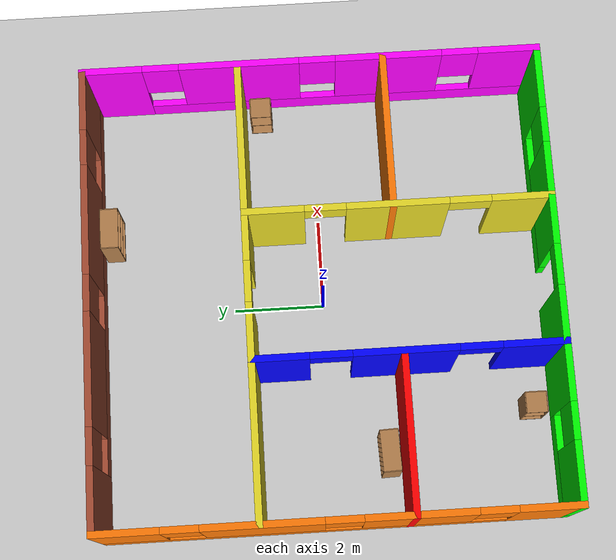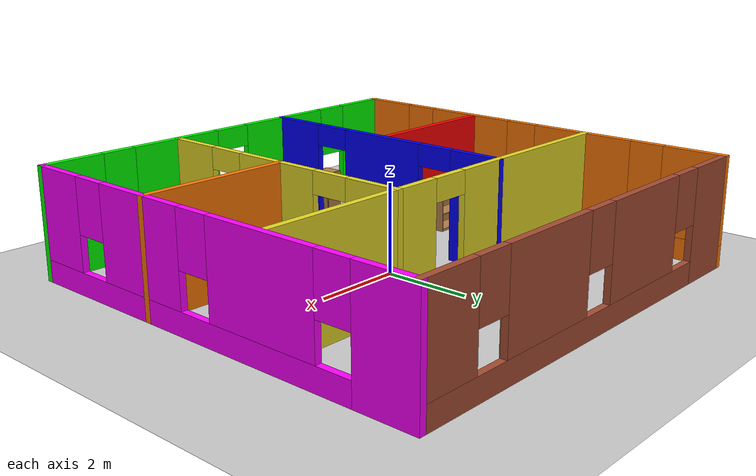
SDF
<sdf version="1.7">
 <world name="default">
  <light name="sun" type="directional">
   <pose>0 0 10 0 -0 0</pose>
   <diffuse>0.8 0.8 0.8 1</diffuse>
   <specular>0.2 0.2 0.2 1</specular>
   <attenuation>
    <range>1000</range>
    <constant>0.9</constant>
    <linear>0.01</linear>
    <quadratic>0.001</quadratic>
   </attenuation>
   <direction>-0.5 0.1 -0.9</direction>
   <spot><inner_angle>0</inner_angle><outer_angle>0</outer_angle><falloff>0</falloff></spot>
  </light>
  <model name="ground_plane">
   <static>1</static>
   <link name="link">
    <collision name="collision">
     <geometry><plane><normal>0 0 1</normal><size>100 100</size></plane></geometry>
     <surface>
      <contact><collide_bitmask>65535</collide_bitmask></contact>
      <friction><ode><mu>100</mu><mu2>50</mu2></ode></friction>
     </surface>
    </collision>
    <visual name="visual">
     <cast_shadows>0</cast_shadows>
     <geometry><plane><normal>0 0 1</normal><size>100 100</size></plane></geometry>
     <material>
      <script><uri>file://media/materials/scripts/gazebo.material</uri><name>Gazebo/Grey</name></script>
     </material>
    </visual>
   </link>
  </model>
  <gravity>0 0 -9.8</gravity>
  <magnetic_field>6e-06 2.3e-05 -4.2e-05</magnetic_field>
  <atmosphere type="adiabatic"/>
  <physics name="default_physics" default="0" type="ode">
   <max_step_size>0.001</max_step_size>
   <real_time_factor>1</real_time_factor>
   <real_time_update_rate>1000</real_time_update_rate>
  </physics>
  <scene><ambient>0.4 0.4 0.4 1</ambient><background>0.7 0.7 0.7 1</background><shadows>1</shadows></scene>
  <spherical_coordinates>
   <surface_model>EARTH_WGS84</surface_model>
   <latitude_deg>0</latitude_deg>
   <longitude_deg>0</longitude_deg>
   <elevation>0</elevation>
   <heading_deg>0</heading_deg>
  </spherical_coordinates>
  <model name="model">
   <link name="Wall_11">
    <pose>1.6 -1.7 0 0 0 -1.5708</pose>
    <visual name="Wall_11_Visual_0">
     <pose>-2.69394 0 1.25 0 -0 0</pose>
     <geometry><box><size>1.36212 0.15 2.5</size></box></geometry>
     <material>
      <script><uri>file://media/materials/scripts/gazebo.material</uri><name>Gazebo/Yellow</name></script>
      <ambient>1 1 0 1</ambient>
     </material>
     <meta><layer>0</layer></meta>
    </visual>
    <collision name="Wall_11_Collision_0">
     <geometry><box><size>1.36212 0.15 2.5</size></box></geometry>
     <pose>-2.69394 0 1.25 0 -0 0</pose>
    </collision>
    <visual name="Wall_11_Visual_1">
     <pose>-0.001566 0 1.25 0 -0 0</pose>
     <geometry><box><size>2.22263 0.15 2.5</size></box></geometry>
     <material>
      <script><uri>file://media/materials/scripts/gazebo.material</uri><name>Gazebo/Yellow</name></script>
      <ambient>1 1 0 1</ambient>
     </material>
     <meta><layer>0</layer></meta>
    </visual>
    <collision name="Wall_11_Collision_1">
     <geometry><box><size>2.22263 0.15 2.5</size></box></geometry>
     <pose>-0.001566 0 1.25 0 -0 0</pose>
    </collision>
    <visual name="Wall_11_Visual_2">
     <pose>2.69238 0 1.25 0 -0 0</pose>
     <geometry><box><size>1.36525 0.15 2.5</size></box></geometry>
     <material>
      <script><uri>file://media/materials/scripts/gazebo.material</uri><name>Gazebo/Yellow</name></script>
      <ambient>1 1 0 1</ambient>
     </material>
     <meta><layer>0</layer></meta>
    </visual>
    <collision name="Wall_11_Collision_2">
     <geometry><box><size>1.36525 0.15 2.5</size></box></geometry>
     <pose>2.69238 0 1.25 0 -0 0</pose>
    </collision>
    <visual name="Wall_11_Visual_3">
     <pose>-1.56288 0 2.25 0 -0 0</pose>
     <geometry><box><size>0.9 0.15 0.5</size></box></geometry>
     <material>
      <script><uri>file://media/materials/scripts/gazebo.material</uri><name>Gazebo/Yellow</name></script>
      <ambient>1 1 0 1</ambient>
     </material>
     <meta><layer>0</layer></meta>
    </visual>
    <collision name="Wall_11_Collision_3">
     <geometry><box><size>0.9 0.15 0.5</size></box></geometry>
     <pose>-1.56288 0 2.25 0 -0 0</pose>
    </collision>
    <visual name="Wall_11_Visual_4">
     <pose>1.55975 0 2.25 0 -0 0</pose>
     <geometry><box><size>0.9 0.15 0.5</size></box></geometry>
     <material>
      <script><uri>file://media/materials/scripts/gazebo.material</uri><name>Gazebo/Yellow</name></script>
      <ambient>0 1 0 1</ambient>
     </material>
     <meta><layer>0</layer></meta>
    </visual>
    <collision name="Wall_11_Collision_4">
     <geometry><box><size>0.9 0.15 0.5</size></box></geometry>
     <pose>1.55975 0 2.25 0 -0 0</pose>
    </collision>
   </link>
   <link name="Wall_13">
    <collision name="Wall_13_Collision">
     <geometry><box><size>3.55 0.15 2.5</size></box></geometry>
     <pose>0 0 1.25 0 -0 0</pose>
    </collision>
    <visual name="Wall_13_Visual">
     <pose>0 0 1.25 0 -0 0</pose>
     <geometry><box><size>3.55 0.15 2.5</size></box></geometry>
     <material>
      <script><uri>file://media/materials/scripts/gazebo.material</uri><name>Gazebo/Grey</name></script>
      <ambient>1 0 0 1</ambient>
     </material>
     <meta><layer>0</layer></meta>
    </visual>
    <pose>-3.3 -1.6 0 0 -0 0</pose>
   </link>
   <link name="Wall_15">
    <collision name="Wall_15_Collision">
     <geometry><box><size>3.55 0.15 2.5</size></box></geometry>
     <pose>0 0 1.25 0 -0 0</pose>
    </collision>
    <visual name="Wall_15_Visual">
     <pose>0 0 1.25 0 -0 0</pose>
     <geometry><box><size>3.55 0.15 2.5</size></box></geometry>
     <material>
      <script><uri>file://media/materials/scripts/gazebo.material</uri><name>Gazebo/Grey</name></script>
      <ambient>0.996078 0.47451 0.0196078 1</ambient>
     </material>
     <meta><layer>0</layer></meta>
    </visual>
    <pose>3.3 -1.6 0 0 -0 0</pose>
   </link>
   <link name="Wall_2">
    <pose>0 -5 0 0 -0 3.14159</pose>
    <visual name="Wall_2_Visual_0">
     <pose>-4.33866 0 1.25 0 -0 0</pose>
     <geometry><box><size>1.47269 0.15 2.5</size></box></geometry>
     <material>
      <script><uri>file://media/materials/scripts/gazebo.material</uri><name>Gazebo/Grey</name></script>
      <ambient>0 1 0 1</ambient>
     </material>
     <meta><layer>0</layer></meta>
    </visual>
    <collision name="Wall_2_Collision_0">
     <geometry><box><size>1.47269 0.15 2.5</size></box></geometry>
     <pose>-4.33866 0 1.25 0 -0 0</pose>
    </collision>
    <visual name="Wall_2_Visual_1">
     <pose>1.63385 0 1.25 0 -0 0</pose>
     <geometry><box><size>2.48081 0.15 2.5</size></box></geometry>
     <material>
      <script><uri>file://media/materials/scripts/gazebo.material</uri><name>Gazebo/Grey</name></script>
      <ambient>0 1 0 1</ambient>
     </material>
     <meta><layer>0</layer></meta>
    </visual>
    <collision name="Wall_2_Collision_1">
     <geometry><box><size>2.48081 0.15 2.5</size></box></geometry>
     <pose>1.63385 0 1.25 0 -0 0</pose>
    </collision>
    <visual name="Wall_2_Visual_2">
     <pose>-2.05443 0 0.25 0 -0 0</pose>
     <geometry><box><size>3.09576 0.15 0.5</size></box></geometry>
     <material>
      <script><uri>file://media/materials/scripts/gazebo.material</uri><name>Gazebo/Grey</name></script>
      <ambient>0 1 0 1</ambient>
     </material>
     <meta><layer>0</layer></meta>
    </visual>
    <collision name="Wall_2_Collision_2">
     <geometry><box><size>3.09576 0.15 0.5</size></box></geometry>
     <pose>-2.05443 0 0.25 0 -0 0</pose>
    </collision>
    <visual name="Wall_2_Visual_3">
     <pose>3.97463 0 0.25 0 -0 0</pose>
     <geometry><box><size>2.20074 0.15 0.5</size></box></geometry>
     <material>
      <script><uri>file://media/materials/scripts/gazebo.material</uri><name>Gazebo/Grey</name></script>
      <ambient>0 1 0 1</ambient>
     </material>
     <meta><layer>0</layer></meta>
    </visual>
    <collision name="Wall_2_Collision_3">
     <geometry><box><size>2.20074 0.15 0.5</size></box></geometry>
     <pose>3.97463 0 0.25 0 -0 0</pose>
    </collision>
    <visual name="Wall_2_Visual_4">
     <pose>-1.65443 0 1.5 0 -0 0</pose>
     <geometry><box><size>2.29576 0.15 2</size></box></geometry>
     <material>
      <script><uri>file://media/materials/scripts/gazebo.material</uri><name>Gazebo/Grey</name></script>
      <ambient>0 1 0 1</ambient>
     </material>
     <meta><layer>0</layer></meta>
    </visual>
    <collision name="Wall_2_Collision_4">
     <geometry><box><size>2.29576 0.15 2</size></box></geometry>
     <pose>-1.65443 0 1.5 0 -0 0</pose>
    </collision>
    <visual name="Wall_2_Visual_5">
     <pose>-1.65443 0 1.5 0 -0 0</pose>
     <geometry><box><size>2.29576 0.15 2</size></box></geometry>
     <material>
      <script><uri>file://media/materials/scripts/gazebo.material</uri><name>Gazebo/Grey</name></script>
      <ambient>0 1 0 1</ambient>
     </material>
     <meta><layer>0</layer></meta>
    </visual>
    <collision name="Wall_2_Collision_5">
     <geometry><box><size>2.29576 0.15 2</size></box></geometry>
     <pose>-1.65443 0 1.5 0 -0 0</pose>
    </collision>
    <visual name="Wall_2_Visual_6">
     <pose>4.37463 0 1.5 0 -0 0</pose>
     <geometry><box><size>1.40074 0.15 2</size></box></geometry>
     <material>
      <script><uri>file://media/materials/scripts/gazebo.material</uri><name>Gazebo/Grey</name></script>
      <ambient>0 1 0 1</ambient>
     </material>
     <meta><layer>0</layer></meta>
    </visual>
    <collision name="Wall_2_Collision_6">
     <geometry><box><size>1.40074 0.15 2</size></box></geometry>
     <pose>4.37463 0 1.5 0 -0 0</pose>
    </collision>
    <visual name="Wall_2_Visual_7">
     <pose>-3.20231 0 1.9 0 -0 0</pose>
     <geometry><box><size>0.8 0.15 1.2</size></box></geometry>
     <material>
      <script><uri>file://media/materials/scripts/gazebo.material</uri><name>Gazebo/Grey</name></script>
      <ambient>0 1 0 1</ambient>
     </material>
     <meta><layer>0</layer></meta>
    </visual>
    <collision name="Wall_2_Collision_7">
     <geometry><box><size>0.8 0.15 1.2</size></box></geometry>
     <pose>-3.20231 0 1.9 0 -0 0</pose>
    </collision>
    <visual name="Wall_2_Visual_8">
     <pose>3.27426 0 1.9 0 -0 0</pose>
     <geometry><box><size>0.8 0.15 1.2</size></box></geometry>
     <material>
      <script><uri>file://media/materials/scripts/gazebo.material</uri><name>Gazebo/Grey</name></script>
      <ambient>0 1 0 1</ambient>
     </material>
     <meta><layer>0</layer></meta>
    </visual>
    <collision name="Wall_2_Collision_8">
     <geometry><box><size>0.8 0.15 1.2</size></box></geometry>
     <pose>3.27426 0 1.9 0 -0 0</pose>
    </collision>
    <visual name="Wall_2_Visual_9">
     <pose>-0.05655 0 2.25 0 -0 0</pose>
     <geometry><box><size>0.9 0.15 0.5</size></box></geometry>
     <material>
      <script><uri>file://media/materials/scripts/gazebo.material</uri><name>Gazebo/Grey</name></script>
      <ambient>0 1 0 1</ambient>
     </material>
     <meta><layer>0</layer></meta>
    </visual>
    <collision name="Wall_2_Collision_9">
     <geometry><box><size>0.9 0.15 0.5</size></box></geometry>
     <pose>-0.05655 0 2.25 0 -0 0</pose>
    </collision>
    <visual name="Wall_2_Visual_10">
     <pose>-0.05655 0 2.25 0 -0 0</pose>
     <geometry><box><size>0.9 0.15 0.5</size></box></geometry>
     <material>
      <script><uri>file://media/materials/scripts/gazebo.material</uri><name>Gazebo/Grey</name></script>
      <ambient>0 1 0 1</ambient>
     </material>
     <meta><layer>0</layer></meta>
    </visual>
    <collision name="Wall_2_Collision_10">
     <geometry><box><size>0.9 0.15 0.5</size></box></geometry>
     <pose>-0.05655 0 2.25 0 -0 0</pose>
    </collision>
   </link>
   <link name="Wall_3">
    <pose>-5 0 0 0 -0 1.5708</pose>
    <visual name="Wall_3_Visual_0">
     <pose>-4.37894 0 1.25 0 -0 0</pose>
     <geometry><box><size>1.39212 0.15 2.5</size></box></geometry>
     <material>
      <script><uri>file://media/materials/scripts/gazebo.material</uri><name>Gazebo/Grey</name></script>
      <ambient>0.996078 0.47451 0.0196078 1</ambient>
     </material>
     <meta><layer>0</layer></meta>
    </visual>
    <collision name="Wall_3_Collision_0">
     <geometry><box><size>1.39212 0.15 2.5</size></box></geometry>
     <pose>-4.37894 0 1.25 0 -0 0</pose>
    </collision>
    <visual name="Wall_3_Visual_1">
     <pose>0.69606 0 0.25 0 -0 0</pose>
     <geometry><box><size>8.75788 0.15 0.5</size></box></geometry>
     <material>
      <script><uri>file://media/materials/scripts/gazebo.material</uri><name>Gazebo/Grey</name></script>
      <ambient>0.996078 0.47451 0.0196078 1</ambient>
     </material>
     <meta><layer>0</layer></meta>
    </visual>
    <collision name="Wall_3_Collision_1">
     <geometry><box><size>8.75788 0.15 0.5</size></box></geometry>
     <pose>0.69606 0 0.25 0 -0 0</pose>
    </collision>
    <visual name="Wall_3_Visual_2">
     <pose>-1.71 0 1.5 0 -0 0</pose>
     <geometry><box><size>2.34576 0.15 2</size></box></geometry>
     <material>
      <script><uri>file://media/materials/scripts/gazebo.material</uri><name>Gazebo/Grey</name></script>
      <ambient>0.996078 0.47451 0.0196078 1</ambient>
     </material>
     <meta><layer>0</layer></meta>
    </visual>
    <collision name="Wall_3_Collision_2">
     <geometry><box><size>2.34576 0.15 2</size></box></geometry>
     <pose>-1.71 0 1.5 0 -0 0</pose>
    </collision>
    <visual name="Wall_3_Visual_3">
     <pose>1.53985 0 1.5 0 -0 0</pose>
     <geometry><box><size>2.55394 0.15 2</size></box></geometry>
     <material>
      <script><uri>file://media/materials/scripts/gazebo.material</uri><name>Gazebo/Grey</name></script>
      <ambient>0.996078 0.47451 0.0196078 1</ambient>
     </material>
     <meta><layer>0</layer></meta>
    </visual>
    <collision name="Wall_3_Collision_3">
     <geometry><box><size>2.55394 0.15 2</size></box></geometry>
     <pose>1.53985 0 1.5 0 -0 0</pose>
    </collision>
    <visual name="Wall_3_Visual_4">
     <pose>4.34591 0 1.5 0 -0 0</pose>
     <geometry><box><size>1.45818 0.15 2</size></box></geometry>
     <material>
      <script><uri>file://media/materials/scripts/gazebo.material</uri><name>Gazebo/Grey</name></script>
      <ambient>0.996078 0.47451 0.0196078 1</ambient>
     </material>
     <meta><layer>0</layer></meta>
    </visual>
    <collision name="Wall_3_Collision_4">
     <geometry><box><size>1.45818 0.15 2</size></box></geometry>
     <pose>4.34591 0 1.5 0 -0 0</pose>
    </collision>
    <visual name="Wall_3_Visual_5">
     <pose>-3.28288 0 1.9 0 -0 0</pose>
     <geometry><box><size>0.8 0.15 1.2</size></box></geometry>
     <material>
      <script><uri>file://media/materials/scripts/gazebo.material</uri><name>Gazebo/Grey</name></script>
      <ambient>0.996078 0.47451 0.0196078 1</ambient>
     </material>
     <meta><layer>0</layer></meta>
    </visual>
    <collision name="Wall_3_Collision_5">
     <geometry><box><size>0.8 0.15 1.2</size></box></geometry>
     <pose>-3.28288 0 1.9 0 -0 0</pose>
    </collision>
    <visual name="Wall_3_Visual_6">
     <pose>-0.137118 0 1.9 0 -0 0</pose>
     <geometry><box><size>0.8 0.15 1.2</size></box></geometry>
     <material>
      <script><uri>file://media/materials/scripts/gazebo.material</uri><name>Gazebo/Grey</name></script>
      <ambient>0.996078 0.47451 0.0196078 1</ambient>
     </material>
     <meta><layer>0</layer></meta>
    </visual>
    <collision name="Wall_3_Collision_6">
     <geometry><box><size>0.8 0.15 1.2</size></box></geometry>
     <pose>-0.137118 0 1.9 0 -0 0</pose>
    </collision>
    <visual name="Wall_3_Visual_7">
     <pose>3.21682 0 1.9 0 -0 0</pose>
     <geometry><box><size>0.8 0.15 1.2</size></box></geometry>
     <material>
      <script><uri>file://media/materials/scripts/gazebo.material</uri><name>Gazebo/Grey</name></script>
      <ambient>0.996078 0.47451 0.0196078 1</ambient>
     </material>
     <meta><layer>0</layer></meta>
    </visual>
    <collision name="Wall_3_Collision_7">
     <geometry><box><size>0.8 0.15 1.2</size></box></geometry>
     <pose>3.21682 0 1.9 0 -0 0</pose>
    </collision>
   </link>
   <link name="Wall_4">
    <pose>0 5 0 0 -0 0</pose>
    <visual name="Wall_4_Visual_0">
     <pose>-4.33993 0 1.25 0 -0 0</pose>
     <geometry><box><size>1.47013 0.15 2.5</size></box></geometry>
     <material>
      <script><uri>file://media/materials/scripts/gazebo.material</uri><name>Gazebo/Bricks</name></script>
      <ambient>0.996078 0.47451 0.0196078 1</ambient>
     </material>
     <meta><layer>0</layer></meta>
    </visual>
    <collision name="Wall_4_Collision_0">
     <geometry><box><size>1.47013 0.15 2.5</size></box></geometry>
     <pose>-4.33993 0 1.25 0 -0 0</pose>
    </collision>
    <visual name="Wall_4_Visual_1">
     <pose>0.735067 0 0.25 0 -0 0</pose>
     <geometry><box><size>8.67987 0.15 0.5</size></box></geometry>
     <material>
      <script><uri>file://media/materials/scripts/gazebo.material</uri><name>Gazebo/Bricks</name></script>
      <ambient>0.996078 0.47451 0.0196078 1</ambient>
     </material>
     <meta><layer>0</layer></meta>
    </visual>
    <collision name="Wall_4_Collision_1">
     <geometry><box><size>8.67987 0.15 0.5</size></box></geometry>
     <pose>0.735067 0 0.25 0 -0 0</pose>
    </collision>
    <visual name="Wall_4_Visual_2">
     <pose>-1.58572 0 1.5 0 -0 0</pose>
     <geometry><box><size>2.43829 0.15 2</size></box></geometry>
     <material>
      <script><uri>file://media/materials/scripts/gazebo.material</uri><name>Gazebo/Bricks</name></script>
      <ambient>0.996078 0.47451 0.0196078 1</ambient>
     </material>
     <meta><layer>0</layer></meta>
    </visual>
    <collision name="Wall_4_Collision_2">
     <geometry><box><size>2.43829 0.15 2</size></box></geometry>
     <pose>-1.58572 0 1.5 0 -0 0</pose>
    </collision>
    <visual name="Wall_4_Visual_3">
     <pose>1.65256 0 1.5 0 -0 0</pose>
     <geometry><box><size>2.43829 0.15 2</size></box></geometry>
     <material>
      <script><uri>file://media/materials/scripts/gazebo.material</uri><name>Gazebo/Bricks</name></script>
      <ambient>0.996078 0.47451 0.0196078 1</ambient>
     </material>
     <meta><layer>0</layer></meta>
    </visual>
    <collision name="Wall_4_Collision_3">
     <geometry><box><size>2.43829 0.15 2</size></box></geometry>
     <pose>1.65256 0 1.5 0 -0 0</pose>
    </collision>
    <visual name="Wall_4_Visual_4">
     <pose>4.37335 0 1.5 0 -0 0</pose>
     <geometry><box><size>1.4033 0.15 2</size></box></geometry>
     <material>
      <script><uri>file://media/materials/scripts/gazebo.material</uri><name>Gazebo/Bricks</name></script>
      <ambient>0.996078 0.47451 0.0196078 1</ambient>
     </material>
     <meta><layer>0</layer></meta>
    </visual>
    <collision name="Wall_4_Collision_4">
     <geometry><box><size>1.4033 0.15 2</size></box></geometry>
     <pose>4.37335 0 1.5 0 -0 0</pose>
    </collision>
    <visual name="Wall_4_Visual_5">
     <pose>-3.20487 0 1.9 0 -0 0</pose>
     <geometry><box><size>0.8 0.15 1.2</size></box></geometry>
     <material>
      <script><uri>file://media/materials/scripts/gazebo.material</uri><name>Gazebo/Bricks</name></script>
      <ambient>0.996078 0.47451 0.0196078 1</ambient>
     </material>
     <meta><layer>0</layer></meta>
    </visual>
    <collision name="Wall_4_Collision_5">
     <geometry><box><size>0.8 0.15 1.2</size></box></geometry>
     <pose>-3.20487 0 1.9 0 -0 0</pose>
    </collision>
    <visual name="Wall_4_Visual_6">
     <pose>0.033419 0 1.9 0 -0 0</pose>
     <geometry><box><size>0.8 0.15 1.2</size></box></geometry>
     <material>
      <script><uri>file://media/materials/scripts/gazebo.material</uri><name>Gazebo/Bricks</name></script>
      <ambient>0.996078 0.47451 0.0196078 1</ambient>
     </material>
     <meta><layer>0</layer></meta>
    </visual>
    <collision name="Wall_4_Collision_6">
     <geometry><box><size>0.8 0.15 1.2</size></box></geometry>
     <pose>0.033419 0 1.9 0 -0 0</pose>
    </collision>
    <visual name="Wall_4_Visual_7">
     <pose>3.2717 0 1.9 0 -0 0</pose>
     <geometry><box><size>0.8 0.15 1.2</size></box></geometry>
     <material>
      <script><uri>file://media/materials/scripts/gazebo.material</uri><name>Gazebo/Bricks</name></script>
      <ambient>0.996078 0.47451 0.0196078 1</ambient>
     </material>
     <meta><layer>0</layer></meta>
    </visual>
    <collision name="Wall_4_Collision_7">
     <geometry><box><size>0.8 0.15 1.2</size></box></geometry>
     <pose>3.2717 0 1.9 0 -0 0</pose>
    </collision>
   </link>
   <link name="Wall_5">
    <pose>5 0 0 0 0 -1.5708</pose>
    <visual name="Wall_5_Visual_0">
     <pose>-4.38061 0 1.25 0 -0 0</pose>
     <geometry><box><size>1.38879 0.15 2.5</size></box></geometry>
     <material>
      <script><uri>file://media/materials/scripts/gazebo.material</uri><name>Gazebo/Grey</name></script>
      <ambient>1 0 1 1</ambient>
     </material>
     <meta><layer>0</layer></meta>
    </visual>
    <collision name="Wall_5_Collision_0">
     <geometry><box><size>1.38879 0.15 2.5</size></box></geometry>
     <pose>-4.38061 0 1.25 0 -0 0</pose>
    </collision>
    <visual name="Wall_5_Visual_1">
     <pose>0.694394 0 0.25 0 -0 0</pose>
     <geometry><box><size>8.76121 0.15 0.5</size></box></geometry>
     <material>
      <script><uri>file://media/materials/scripts/gazebo.material</uri><name>Gazebo/Grey</name></script>
      <ambient>1 0 1 1</ambient>
     </material>
     <meta><layer>0</layer></meta>
    </visual>
    <collision name="Wall_5_Collision_1">
     <geometry><box><size>8.76121 0.15 0.5</size></box></geometry>
     <pose>0.694394 0 0.25 0 -0 0</pose>
    </collision>
    <visual name="Wall_5_Visual_2">
     <pose>-1.56298 0 1.5 0 -0 0</pose>
     <geometry><box><size>2.64646 0.15 2</size></box></geometry>
     <material>
      <script><uri>file://media/materials/scripts/gazebo.material</uri><name>Gazebo/Grey</name></script>
      <ambient>1 0 1 1</ambient>
     </material>
     <meta><layer>0</layer></meta>
    </visual>
    <collision name="Wall_5_Collision_2">
     <geometry><box><size>2.64646 0.15 2</size></box></geometry>
     <pose>-1.56298 0 1.5 0 -0 0</pose>
    </collision>
    <visual name="Wall_5_Visual_3">
     <pose>1.73313 0 1.5 0 -0 0</pose>
     <geometry><box><size>2.34576 0.15 2</size></box></geometry>
     <material>
      <script><uri>file://media/materials/scripts/gazebo.material</uri><name>Gazebo/Grey</name></script>
      <ambient>1 0 1 1</ambient>
     </material>
     <meta><layer>0</layer></meta>
    </visual>
    <collision name="Wall_5_Collision_3">
     <geometry><box><size>2.34576 0.15 2</size></box></geometry>
     <pose>1.73313 0 1.5 0 -0 0</pose>
    </collision>
    <visual name="Wall_5_Visual_4">
     <pose>4.39051 0 1.5 0 -0 0</pose>
     <geometry><box><size>1.36899 0.15 2</size></box></geometry>
     <material>
      <script><uri>file://media/materials/scripts/gazebo.material</uri><name>Gazebo/Grey</name></script>
      <ambient>1 0 1 1</ambient>
     </material>
     <meta><layer>0</layer></meta>
    </visual>
    <collision name="Wall_5_Collision_4">
     <geometry><box><size>1.36899 0.15 2</size></box></geometry>
     <pose>4.39051 0 1.5 0 -0 0</pose>
    </collision>
    <visual name="Wall_5_Visual_5">
     <pose>-3.28621 0 1.9 0 -0 0</pose>
     <geometry><box><size>0.8 0.15 1.2</size></box></geometry>
     <material>
      <script><uri>file://media/materials/scripts/gazebo.material</uri><name>Gazebo/Grey</name></script>
      <ambient>1 0 1 1</ambient>
     </material>
     <meta><layer>0</layer></meta>
    </visual>
    <collision name="Wall_5_Collision_5">
     <geometry><box><size>0.8 0.15 1.2</size></box></geometry>
     <pose>-3.28621 0 1.9 0 -0 0</pose>
    </collision>
    <visual name="Wall_5_Visual_6">
     <pose>0.160249 0 1.9 0 -0 0</pose>
     <geometry><box><size>0.8 0.15 1.2</size></box></geometry>
     <material>
      <script><uri>file://media/materials/scripts/gazebo.material</uri><name>Gazebo/Grey</name></script>
      <ambient>1 0 1 1</ambient>
     </material>
     <meta><layer>0</layer></meta>
    </visual>
    <collision name="Wall_5_Collision_6">
     <geometry><box><size>0.8 0.15 1.2</size></box></geometry>
     <pose>0.160249 0 1.9 0 -0 0</pose>
    </collision>
    <visual name="Wall_5_Visual_7">
     <pose>3.30601 0 1.9 0 -0 0</pose>
     <geometry><box><size>0.8 0.15 1.2</size></box></geometry>
     <material>
      <script><uri>file://media/materials/scripts/gazebo.material</uri><name>Gazebo/Grey</name></script>
      <ambient>1 0 1 1</ambient>
     </material>
     <meta><layer>0</layer></meta>
    </visual>
    <collision name="Wall_5_Collision_7">
     <geometry><box><size>0.8 0.15 1.2</size></box></geometry>
     <pose>3.30601 0 1.9 0 -0 0</pose>
    </collision>
   </link>
   <link name="Wall_7">
    <pose>0 1.6 0 0 -0 0</pose>
    <visual name="Wall_7_Visual_0">
     <pose>-2.72266 0 1.25 0 -0 0</pose>
     <geometry><box><size>4.70468 0.15 2.5</size></box></geometry>
     <material>
      <script><uri>file://media/materials/scripts/gazebo.material</uri><name>Gazebo/Yellow</name></script>
      <ambient>0.435294 0.796078 0.67451 1</ambient>
     </material>
     <meta><layer>0</layer></meta>
    </visual>
    <collision name="Wall_7_Collision_0">
     <geometry><box><size>4.70468 0.15 2.5</size></box></geometry>
     <pose>-2.72266 0 1.25 0 -0 0</pose>
    </collision>
    <visual name="Wall_7_Visual_1">
     <pose>2.80234 0 1.25 0 -0 0</pose>
     <geometry><box><size>4.54532 0.15 2.5</size></box></geometry>
     <material>
      <script><uri>file://media/materials/scripts/gazebo.material</uri><name>Gazebo/Yellow</name></script>
      <ambient>0.435294 0.796078 0.67451 1</ambient>
     </material>
     <meta><layer>0</layer></meta>
    </visual>
    <collision name="Wall_7_Collision_1">
     <geometry><box><size>4.54532 0.15 2.5</size></box></geometry>
     <pose>2.80234 0 1.25 0 -0 0</pose>
    </collision>
    <visual name="Wall_7_Visual_2">
     <pose>0.07968 0 2.25 0 -0 0</pose>
     <geometry><box><size>0.9 0.15 0.5</size></box></geometry>
     <material>
      <script><uri>file://media/materials/scripts/gazebo.material</uri><name>Gazebo/Yellow</name></script>
      <ambient>0.435294 0.796078 0.67451 1</ambient>
     </material>
     <meta><layer>0</layer></meta>
    </visual>
    <collision name="Wall_7_Collision_2">
     <geometry><box><size>0.9 0.15 0.5</size></box></geometry>
     <pose>0.07968 0 2.25 0 -0 0</pose>
    </collision>
   </link>
   <link name="Wall_9">
    <pose>-1.6 -1.7 0 0 0 -1.5708</pose>
    <visual name="Wall_9_Visual_0">
     <pose>-2.72864 0 1.25 0 -0 0</pose>
     <geometry><box><size>1.29273 0.15 2.5</size></box></geometry>
     <material>
      <script><uri>file://media/materials/scripts/gazebo.material</uri><name>Gazebo/Grey</name></script>
      <ambient>0 0 1 1</ambient>
     </material>
     <meta><layer>0</layer></meta>
    </visual>
    <collision name="Wall_9_Collision_0">
     <geometry><box><size>1.29273 0.15 2.5</size></box></geometry>
     <pose>-2.72864 0 1.25 0 -0 0</pose>
    </collision>
    <visual name="Wall_9_Visual_1">
     <pose>-0.059392 0 1.25 0 -0 0</pose>
     <geometry><box><size>2.24576 0.15 2.5</size></box></geometry>
     <material>
      <script><uri>file://media/materials/scripts/gazebo.material</uri><name>Gazebo/Grey</name></script>
      <ambient>0 0 1 1</ambient>
     </material>
     <meta><layer>0</layer></meta>
    </visual>
    <collision name="Wall_9_Collision_1">
     <geometry><box><size>2.24576 0.15 2.5</size></box></geometry>
     <pose>-0.059392 0 1.25 0 -0 0</pose>
    </collision>
    <visual name="Wall_9_Visual_2">
     <pose>2.66925 0 1.25 0 -0 0</pose>
     <geometry><box><size>1.41151 0.15 2.5</size></box></geometry>
     <material>
      <script><uri>file://media/materials/scripts/gazebo.material</uri><name>Gazebo/Grey</name></script>
      <ambient>0 0 1 1</ambient>
     </material>
     <meta><layer>0</layer></meta>
    </visual>
    <collision name="Wall_9_Collision_2">
     <geometry><box><size>1.41151 0.15 2.5</size></box></geometry>
     <pose>2.66925 0 1.25 0 -0 0</pose>
    </collision>
    <visual name="Wall_9_Visual_3">
     <pose>-1.63227 0 2.25 0 -0 0</pose>
     <geometry><box><size>0.9 0.15 0.5</size></box></geometry>
     <material>
      <script><uri>file://media/materials/scripts/gazebo.material</uri><name>Gazebo/Grey</name></script>
      <ambient>0 0 1 1</ambient>
     </material>
     <meta><layer>0</layer></meta>
    </visual>
    <collision name="Wall_9_Collision_3">
     <geometry><box><size>0.9 0.15 0.5</size></box></geometry>
     <pose>-1.63227 0 2.25 0 -0 0</pose>
    </collision>
    <visual name="Wall_9_Visual_4">
     <pose>1.51349 0 2.25 0 -0 0</pose>
     <geometry><box><size>0.9 0.15 0.5</size></box></geometry>
     <material>
      <script><uri>file://media/materials/scripts/gazebo.material</uri><name>Gazebo/Grey</name></script>
      <ambient>0 0 1 1</ambient>
     </material>
     <meta><layer>0</layer></meta>
    </visual>
    <collision name="Wall_9_Collision_4">
     <geometry><box><size>0.9 0.15 0.5</size></box></geometry>
     <pose>1.51349 0 2.25 0 -0 0</pose>
    </collision>
   </link>
   <static>1</static>
  </model>
  <model name="bookshelf">
   <static>1</static>
   <link name="link">
    <inertial><mass>1</mass></inertial>
    <collision name="back">
     <pose>0 0.005 0.6 0 -0 0</pose>
     <geometry><box><size>0.9 0.01 1.2</size></box></geometry>
    </collision>
    <visual name="visual1">
     <pose>0 0.005 0.6 0 -0 0</pose>
     <geometry><box><size>0.9 0.01 1.2</size></box></geometry>
     <material>
      <script><uri>file://media/materials/scripts/gazebo.material</uri><name>Gazebo/Wood</name></script>
     </material>
    </visual>
    <collision name="left_side">
     <pose>0.45 -0.195 0.6 0 -0 0</pose>
     <geometry><box><size>0.02 0.4 1.2</size></box></geometry>
    </collision>
    <visual name="visual2">
     <pose>0.45 -0.195 0.6 0 -0 0</pose>
     <geometry><box><size>0.02 0.4 1.2</size></box></geometry>
     <material>
      <script><uri>file://media/materials/scripts/gazebo.material</uri><name>Gazebo/Wood</name></script>
     </material>
    </visual>
    <collision name="right_side">
     <pose>-0.45 -0.195 0.6 0 -0 0</pose>
     <geometry><box><size>0.02 0.4 1.2</size></box></geometry>
    </collision>
    <visual name="visual3">
     <pose>-0.45 -0.195 0.6 0 -0 0</pose>
     <geometry><box><size>0.02 0.4 1.2</size></box></geometry>
     <material>
      <script><uri>file://media/materials/scripts/gazebo.material</uri><name>Gazebo/Wood</name></script>
     </material>
    </visual>
    <collision name="bottom">
     <pose>0 -0.195 0.03 0 -0 0</pose>
     <geometry><box><size>0.88 0.4 0.06</size></box></geometry>
    </collision>
    <visual name="visual4">
     <pose>0 -0.195 0.03 0 -0 0</pose>
     <geometry><box><size>0.88 0.4 0.06</size></box></geometry>
     <material>
      <script><uri>file://media/materials/scripts/gazebo.material</uri><name>Gazebo/Wood</name></script>
     </material>
    </visual>
    <collision name="top">
     <pose>0 -0.195 1.19 0 -0 0</pose>
     <geometry><box><size>0.88 0.4 0.02</size></box></geometry>
    </collision>
    <visual name="visual5">
     <pose>0 -0.195 1.19 0 -0 0</pose>
     <geometry><box><size>0.88 0.4 0.02</size></box></geometry>
     <material>
      <script><uri>file://media/materials/scripts/gazebo.material</uri><name>Gazebo/Wood</name></script>
     </material>
    </visual>
    <collision name="low_shelf">
     <pose>0 -0.195 0.43 0 -0 0</pose>
     <geometry><box><size>0.88 0.4 0.02</size></box></geometry>
    </collision>
    <visual name="visual6">
     <pose>0 -0.195 0.43 0 -0 0</pose>
     <geometry><box><size>0.88 0.4 0.02</size></box></geometry>
     <material>
      <script><uri>file://media/materials/scripts/gazebo.material</uri><name>Gazebo/Wood</name></script>
     </material>
    </visual>
    <collision name="high_shelf">
     <pose>0 -0.195 0.8 0 -0 0</pose>
     <geometry><box><size>0.88 0.4 0.02</size></box></geometry>
    </collision>
    <visual name="visual7">
     <pose>0 -0.195 0.8 0 -0 0</pose>
     <geometry><box><size>0.88 0.4 0.02</size></box></geometry>
     <material>
      <script><uri>file://media/materials/scripts/gazebo.material</uri><name>Gazebo/Wood</name></script>
     </material>
    </visual>
   </link>
   <pose>1.8051 4.87712 0 0 -0 0</pose>
  </model>
  <model name="bookshelf_0">
   <static>1</static>
   <link name="link">
    <inertial><mass>1</mass></inertial>
    <collision name="back">
     <pose>0 0.005 0.6 0 -0 0</pose>
     <geometry><box><size>0.9 0.01 1.2</size></box></geometry>
    </collision>
    <visual name="visual1">
     <pose>0 0.005 0.6 0 -0 0</pose>
     <geometry><box><size>0.9 0.01 1.2</size></box></geometry>
     <material>
      <script><uri>file://media/materials/scripts/gazebo.material</uri><name>Gazebo/Wood</name></script>
     </material>
    </visual>
    <collision name="left_side">
     <pose>0.45 -0.195 0.6 0 -0 0</pose>
     <geometry><box><size>0.02 0.4 1.2</size></box></geometry>
    </collision>
    <visual name="visual2">
     <pose>0.45 -0.195 0.6 0 -0 0</pose>
     <geometry><box><size>0.02 0.4 1.2</size></box></geometry>
     <material>
      <script><uri>file://media/materials/scripts/gazebo.material</uri><name>Gazebo/Wood</name></script>
     </material>
    </visual>
    <collision name="right_side">
     <pose>-0.45 -0.195 0.6 0 -0 0</pose>
     <geometry><box><size>0.02 0.4 1.2</size></box></geometry>
    </collision>
    <visual name="visual3">
     <pose>-0.45 -0.195 0.6 0 -0 0</pose>
     <geometry><box><size>0.02 0.4 1.2</size></box></geometry>
     <material>
      <script><uri>file://media/materials/scripts/gazebo.material</uri><name>Gazebo/Wood</name></script>
     </material>
    </visual>
    <collision name="bottom">
     <pose>0 -0.195 0.03 0 -0 0</pose>
     <geometry><box><size>0.88 0.4 0.06</size></box></geometry>
    </collision>
    <visual name="visual4">
     <pose>0 -0.195 0.03 0 -0 0</pose>
     <geometry><box><size>0.88 0.4 0.06</size></box></geometry>
     <material>
      <script><uri>file://media/materials/scripts/gazebo.material</uri><name>Gazebo/Wood</name></script>
     </material>
    </visual>
    <collision name="top">
     <pose>0 -0.195 1.19 0 -0 0</pose>
     <geometry><box><size>0.88 0.4 0.02</size></box></geometry>
    </collision>
    <visual name="visual5">
     <pose>0 -0.195 1.19 0 -0 0</pose>
     <geometry><box><size>0.88 0.4 0.02</size></box></geometry>
     <material>
      <script><uri>file://media/materials/scripts/gazebo.material</uri><name>Gazebo/Wood</name></script>
     </material>
    </visual>
    <collision name="low_shelf">
     <pose>0 -0.195 0.43 0 -0 0</pose>
     <geometry><box><size>0.88 0.4 0.02</size></box></geometry>
    </collision>
    <visual name="visual6">
     <pose>0 -0.195 0.43 0 -0 0</pose>
     <geometry><box><size>0.88 0.4 0.02</size></box></geometry>
     <material>
      <script><uri>file://media/materials/scripts/gazebo.material</uri><name>Gazebo/Wood</name></script>
     </material>
    </visual>
    <collision name="high_shelf">
     <pose>0 -0.195 0.8 0 -0 0</pose>
     <geometry><box><size>0.88 0.4 0.02</size></box></geometry>
    </collision>
    <visual name="visual7">
     <pose>0 -0.195 0.8 0 -0 0</pose>
     <geometry><box><size>0.88 0.4 0.02</size></box></geometry>
     <material>
      <script><uri>file://media/materials/scripts/gazebo.material</uri><name>Gazebo/Wood</name></script>
     </material>
    </visual>
   </link>
   <pose>-3.50092 -1.4337 0 0 0 -3.10508</pose>
  </model>
  <model name="cabinet">
   <static>1</static>
   <link name="cabinet_bottom_plate">
    <inertial>
     <pose>0 0 -1 0 -0 0</pose>
     <inertia><ixx>2.05</ixx><ixy>0</ixy><ixz>0</ixz><iyy>2.05</iyy><iyz>0</iyz><izz>2.05</izz></inertia>
     <mass>25</mass>
    </inertial>
    <collision name="cabinet_bottom_plate_geom">
     <pose>0 0 0.01 0 -0 0</pose>
     <geometry><box><size>0.45 0.45 0.02</size></box></geometry>
    </collision>
    <visual name="cabinet_bottom_plate_geom_visual">
     <pose>0 0 0.01 0 -0 0</pose>
     <geometry><box><size>0.45 0.45 0.02</size></box></geometry>
     <material>
      <script><uri>file://media/materials/scripts/gazebo.material</uri><name>Gazebo/Wood</name></script>
     </material>
    </visual>
    <collision name="cabinet_bottom_plate_geom_cabinet_back_plate">
     <pose>0.235 0 0.51 0 -0 0</pose>
     <geometry><box><size>0.02 0.45 1.02</size></box></geometry>
    </collision>
    <visual name="cabinet_bottom_plate_geom_cabinet_back_plate_visual">
     <pose>0.235 0 0.51 0 -0 0</pose>
     <geometry><box><size>0.02 0.45 1.02</size></box></geometry>
     <material>
      <script><uri>file://media/materials/scripts/gazebo.material</uri><name>Gazebo/Wood</name></script>
     </material>
    </visual>
    <collision name="cabinet_bottom_plate_geom_cabinet_left_plate">
     <pose>0 0.235 0.51 0 -0 0</pose>
     <geometry><box><size>0.45 0.02 1.02</size></box></geometry>
    </collision>
    <visual name="cabinet_bottom_plate_geom_cabinet_left_plate_visual">
     <pose>0 0.235 0.51 0 -0 0</pose>
     <geometry><box><size>0.45 0.02 1.02</size></box></geometry>
     <material>
      <script><uri>file://media/materials/scripts/gazebo.material</uri><name>Gazebo/Wood</name></script>
     </material>
    </visual>
    <collision name="cabinet_bottom_plate_geom_cabinet_middle_plate">
     <pose>0 0 0.51 0 -0 0</pose>
     <geometry><box><size>0.45 0.45 0.02</size></box></geometry>
    </collision>
    <visual name="cabinet_bottom_plate_geom_cabinet_middle_plate_visual">
     <pose>0 0 0.51 0 -0 0</pose>
     <geometry><box><size>0.45 0.45 0.02</size></box></geometry>
     <material>
      <script><uri>file://media/materials/scripts/gazebo.material</uri><name>Gazebo/Wood</name></script>
     </material>
    </visual>
    <collision name="cabinet_bottom_plate_geom_cabinet_right_plate">
     <pose>0 -0.235 0.51 0 -0 0</pose>
     <geometry><box><size>0.45 0.02 1.02</size></box></geometry>
    </collision>
    <visual name="cabinet_bottom_plate_geom_cabinet_right_plate_visual">
     <pose>0 -0.235 0.51 0 -0 0</pose>
     <geometry><box><size>0.45 0.02 1.02</size></box></geometry>
     <material>
      <script><uri>file://media/materials/scripts/gazebo.material</uri><name>Gazebo/Wood</name></script>
     </material>
    </visual>
    <collision name="cabinet_bottom_plate_geom_cabinet_top_plate">
     <pose>0 0 1.01 0 -0 0</pose>
     <geometry><box><size>0.45 0.45 0.02</size></box></geometry>
    </collision>
    <visual name="cabinet_bottom_plate_geom_cabinet_top_plate_visual">
     <pose>0 0 1.01 0 -0 0</pose>
     <geometry><box><size>0.45 0.45 0.02</size></box></geometry>
     <material>
      <script><uri>file://media/materials/scripts/gazebo.material</uri><name>Gazebo/Wood</name></script>
     </material>
    </visual>
   </link>
   <pose>4.52371 1.17635 0 0 -0 0</pose>
  </model>
  <model name="cabinet_0">
   <static>1</static>
   <link name="cabinet_bottom_plate">
    <inertial>
     <pose>0 0 -1 0 -0 0</pose>
     <inertia><ixx>2.05</ixx><ixy>0</ixy><ixz>0</ixz><iyy>2.05</iyy><iyz>0</iyz><izz>2.05</izz></inertia>
     <mass>25</mass>
    </inertial>
    <collision name="cabinet_bottom_plate_geom">
     <pose>0 0 0.01 0 -0 0</pose>
     <geometry><box><size>0.45 0.45 0.02</size></box></geometry>
    </collision>
    <visual name="cabinet_bottom_plate_geom_visual">
     <pose>0 0 0.01 0 -0 0</pose>
     <geometry><box><size>0.45 0.45 0.02</size></box></geometry>
     <material>
      <script><uri>file://media/materials/scripts/gazebo.material</uri><name>Gazebo/Wood</name></script>
     </material>
    </visual>
    <collision name="cabinet_bottom_plate_geom_cabinet_back_plate">
     <pose>0.235 0 0.51 0 -0 0</pose>
     <geometry><box><size>0.02 0.45 1.02</size></box></geometry>
    </collision>
    <visual name="cabinet_bottom_plate_geom_cabinet_back_plate_visual">
     <pose>0.235 0 0.51 0 -0 0</pose>
     <geometry><box><size>0.02 0.45 1.02</size></box></geometry>
     <material>
      <script><uri>file://media/materials/scripts/gazebo.material</uri><name>Gazebo/Wood</name></script>
     </material>
    </visual>
    <collision name="cabinet_bottom_plate_geom_cabinet_left_plate">
     <pose>0 0.235 0.51 0 -0 0</pose>
     <geometry><box><size>0.45 0.02 1.02</size></box></geometry>
    </collision>
    <visual name="cabinet_bottom_plate_geom_cabinet_left_plate_visual">
     <pose>0 0.235 0.51 0 -0 0</pose>
     <geometry><box><size>0.45 0.02 1.02</size></box></geometry>
     <material>
      <script><uri>file://media/materials/scripts/gazebo.material</uri><name>Gazebo/Wood</name></script>
     </material>
    </visual>
    <collision name="cabinet_bottom_plate_geom_cabinet_middle_plate">
     <pose>0 0 0.51 0 -0 0</pose>
     <geometry><box><size>0.45 0.45 0.02</size></box></geometry>
    </collision>
    <visual name="cabinet_bottom_plate_geom_cabinet_middle_plate_visual">
     <pose>0 0 0.51 0 -0 0</pose>
     <geometry><box><size>0.45 0.45 0.02</size></box></geometry>
     <material>
      <script><uri>file://media/materials/scripts/gazebo.material</uri><name>Gazebo/Wood</name></script>
     </material>
    </visual>
    <collision name="cabinet_bottom_plate_geom_cabinet_right_plate">
     <pose>0 -0.235 0.51 0 -0 0</pose>
     <geometry><box><size>0.45 0.02 1.02</size></box></geometry>
    </collision>
    <visual name="cabinet_bottom_plate_geom_cabinet_right_plate_visual">
     <pose>0 -0.235 0.51 0 -0 0</pose>
     <geometry><box><size>0.45 0.02 1.02</size></box></geometry>
     <material>
      <script><uri>file://media/materials/scripts/gazebo.material</uri><name>Gazebo/Wood</name></script>
     </material>
    </visual>
    <collision name="cabinet_bottom_plate_geom_cabinet_top_plate">
     <pose>0 0 1.01 0 -0 0</pose>
     <geometry><box><size>0.45 0.45 0.02</size></box></geometry>
    </collision>
    <visual name="cabinet_bottom_plate_geom_cabinet_top_plate_visual">
     <pose>0 0 1.01 0 -0 0</pose>
     <geometry><box><size>0.45 0.45 0.02</size></box></geometry>
     <material>
      <script><uri>file://media/materials/scripts/gazebo.material</uri><name>Gazebo/Wood</name></script>
     </material>
    </visual>
   </link>
   <pose>-2.63629 -4.48412 0 0 -0 0</pose>
  </model>
 </world>
</sdf>
